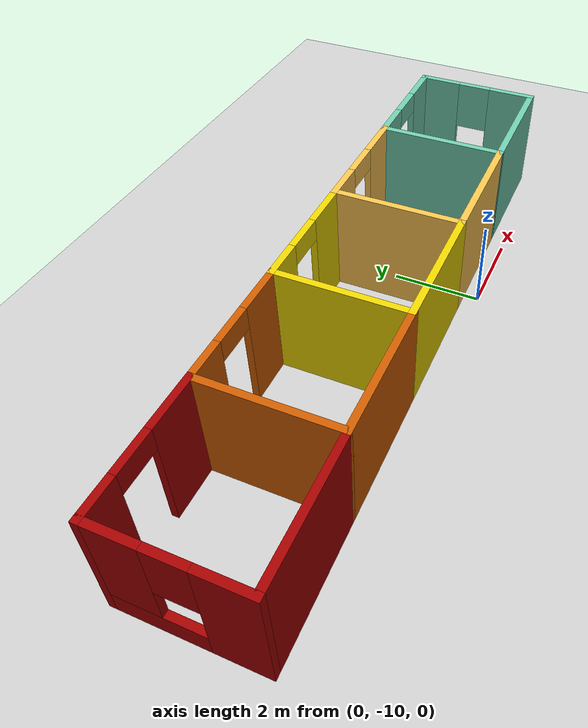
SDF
<sdf version="1.6">
 <world name="default">
  <model name="ground_plane">
   <static>1</static>
   <link name="link">
    <collision name="collision">
     <geometry><plane><normal>0 0 1</normal><size>100 100</size></plane></geometry>
     <surface><friction><ode><mu>100</mu><mu2>50</mu2></ode></friction></surface>
    </collision>
    <visual name="visual">
     <cast_shadows>0</cast_shadows>
     <geometry><plane><normal>0 0 1</normal><size>100 100</size></plane></geometry>
     <material>
      <script><uri>file://media/materials/scripts/gazebo.material</uri><name>Gazebo/Grey</name></script>
     </material>
    </visual>
   </link>
  </model>
  <model name="my_ball">
   <link name="link_0">
    <inertial>
     <mass>1</mass>
     <inertia><ixx>0.1</ixx><ixy>0</ixy><ixz>0</ixz><iyy>0.1</iyy><iyz>0</iyz><izz>0.1</izz></inertia>
    </inertial>
    <visual name="visual">
     <geometry><sphere><radius>0.1</radius></sphere></geometry>
     <material>
      <lighting>1</lighting>
      <script><uri>file://media/materials/scripts/gazebo.material</uri><name>Gazebo/White</name></script>
      <ambient>1 1 1 1</ambient>
      <diffuse>1 1 1 1</diffuse>
      <specular>1 1 1 1</specular>
      <emissive>1 1 1 1</emissive>
      <shader type="vertex"><normal_map>__default__</normal_map></shader>
     </material>
    </visual>
    <collision name="collision">
     <geometry><sphere><radius>0.1</radius></sphere></geometry>
     <surface>
      <friction>
       <ode><mu>1</mu><mu2>1</mu2><fdir1>0 0 0</fdir1><slip1>0</slip1><slip2>0</slip2></ode>
       <torsional>
        <coefficient>1</coefficient>
        <patch_radius>0</patch_radius>
        <surface_radius>0</surface_radius>
        <use_patch_radius>1</use_patch_radius>
        <ode><slip>0</slip></ode>
       </torsional>
      </friction>
      <bounce><restitution_coefficient>0</restitution_coefficient><threshold>1e+06</threshold></bounce>
      <contact>
       <collide_without_contact>0</collide_without_contact>
       <collide_without_contact_bitmask>1</collide_without_contact_bitmask>
       <collide_bitmask>1</collide_bitmask>
       <ode>
        <soft_cfm>0</soft_cfm>
        <soft_erp>0.2</soft_erp>
        <kp>1e+13</kp>
        <kd>1</kd>
        <max_vel>0.01</max_vel>
        <min_depth>0</min_depth>
       </ode>
       <bullet>
        <split_impulse>1</split_impulse>
        <split_impulse_penetration_threshold>-0.01</split_impulse_penetration_threshold>
        <soft_cfm>0</soft_cfm>
        <soft_erp>0.2</soft_erp>
        <kp>1e+13</kp>
        <kd>1</kd>
       </bullet>
      </contact>
     </surface>
    </collision>
   </link>
   <static>0</static>
   <pose>-1.34211 -5.86794 0.1 0 -0 0</pose>
  </model>
  <model name="office_4_0_clone">
   <pose>-2.02145 -8.8346 0 0 0 -3.12984</pose>
   <link name="Wall_0">
    <collision name="Wall_0_Collision">
     <geometry><box><size>3 0.15 2.5</size></box></geometry>
     <pose>0 0 1.25 0 -0 0</pose>
    </collision>
    <visual name="Wall_0_Visual">
     <pose>0 0 1.25 0 -0 0</pose>
     <geometry><box><size>3 0.15 2.5</size></box></geometry>
     <material>
      <script><uri>file://media/materials/scripts/gazebo.material</uri><name>Gazebo/Grey</name></script>
      <ambient>0.435294 0.796078 0.67451 1</ambient>
     </material>
     <meta><layer>0</layer></meta>
    </visual>
    <pose>-5.7 0.8025 0 0 -0 0</pose>
   </link>
   <link name="Wall_1">
    <collision name="Wall_1_Collision">
     <geometry><box><size>3 0.15 2.5</size></box></geometry>
     <pose>0 0 1.25 0 -0 0</pose>
    </collision>
    <visual name="Wall_1_Visual">
     <pose>0 0 1.25 0 -0 0</pose>
     <geometry><box><size>3 0.15 2.5</size></box></geometry>
     <material>
      <script><uri>file://media/materials/scripts/gazebo.material</uri><name>Gazebo/Grey</name></script>
      <ambient>0.435294 0.796078 0.67451 1</ambient>
     </material>
     <meta><layer>0</layer></meta>
    </visual>
    <pose>-4.275 -0.6225 0 0 -0 -1.5708</pose>
   </link>
   <link name="Wall_10">
    <pose>5.7 -2.0475 0 0 -0 3.14159</pose>
    <visual name="Wall_10_Visual_0">
     <pose>-1.06469 0 1.25 0 -0 0</pose>
     <geometry><box><size>0.870623 0.15 2.5</size></box></geometry>
     <material>
      <script><uri>file://media/materials/scripts/gazebo.material</uri><name>Gazebo/Grey</name></script>
      <ambient>0.643137 0 0 1</ambient>
     </material>
     <meta><layer>0</layer></meta>
    </visual>
    <collision name="Wall_10_Collision_0">
     <geometry><box><size>0.870623 0.15 2.5</size></box></geometry>
     <pose>-1.06469 0 1.25 0 -0 0</pose>
    </collision>
    <visual name="Wall_10_Visual_1">
     <pose>0.885312 0 1.25 0 -0 0</pose>
     <geometry><box><size>1.22938 0.15 2.5</size></box></geometry>
     <material>
      <script><uri>file://media/materials/scripts/gazebo.material</uri><name>Gazebo/Grey</name></script>
      <ambient>0.643137 0 0 1</ambient>
     </material>
     <meta><layer>0</layer></meta>
    </visual>
    <collision name="Wall_10_Collision_1">
     <geometry><box><size>1.22938 0.15 2.5</size></box></geometry>
     <pose>0.885312 0 1.25 0 -0 0</pose>
    </collision>
    <visual name="Wall_10_Visual_2">
     <pose>-0.179377 0 2.25 0 -0 0</pose>
     <geometry><box><size>0.9 0.15 0.5</size></box></geometry>
     <material>
      <script><uri>file://media/materials/scripts/gazebo.material</uri><name>Gazebo/Grey</name></script>
      <ambient>0.643137 0 0 1</ambient>
     </material>
     <meta><layer>0</layer></meta>
    </visual>
    <collision name="Wall_10_Collision_2">
     <geometry><box><size>0.9 0.15 0.5</size></box></geometry>
     <pose>-0.179377 0 2.25 0 -0 0</pose>
    </collision>
   </link>
   <link name="Wall_12">
    <pose>0 -2.0475 0 0 -0 0</pose>
    <visual name="Wall_12_Visual_0">
     <pose>-0.909766 0 1.25 0 -0 0</pose>
     <geometry><box><size>1.18047 0.15 2.5</size></box></geometry>
     <material>
      <script><uri>file://media/materials/scripts/gazebo.material</uri><name>Gazebo/Grey</name></script>
      <ambient>0.929412 0.831373 0 1</ambient>
     </material>
     <meta><layer>0</layer></meta>
    </visual>
    <collision name="Wall_12_Collision_0">
     <geometry><box><size>1.18047 0.15 2.5</size></box></geometry>
     <pose>-0.909766 0 1.25 0 -0 0</pose>
    </collision>
    <visual name="Wall_12_Visual_1">
     <pose>1.04023 0 1.25 0 -0 0</pose>
     <geometry><box><size>0.919531 0.15 2.5</size></box></geometry>
     <material>
      <script><uri>file://media/materials/scripts/gazebo.material</uri><name>Gazebo/Grey</name></script>
      <ambient>0.929412 0.831373 0 1</ambient>
     </material>
     <meta><layer>0</layer></meta>
    </visual>
    <collision name="Wall_12_Collision_1">
     <geometry><box><size>0.919531 0.15 2.5</size></box></geometry>
     <pose>1.04023 0 1.25 0 -0 0</pose>
    </collision>
    <visual name="Wall_12_Visual_2">
     <pose>0.130469 0 2.25 0 -0 0</pose>
     <geometry><box><size>0.9 0.15 0.5</size></box></geometry>
     <material>
      <script><uri>file://media/materials/scripts/gazebo.material</uri><name>Gazebo/Grey</name></script>
      <ambient>0.929412 0.831373 0 1</ambient>
     </material>
     <meta><layer>0</layer></meta>
    </visual>
    <collision name="Wall_12_Collision_2">
     <geometry><box><size>0.9 0.15 0.5</size></box></geometry>
     <pose>0.130469 0 2.25 0 -0 0</pose>
    </collision>
   </link>
   <link name="Wall_14">
    <collision name="Wall_14_Collision">
     <geometry><box><size>3 0.15 2.5</size></box></geometry>
     <pose>0 0 1.25 0 -0 0</pose>
    </collision>
    <visual name="Wall_14_Visual">
     <pose>0 0 1.25 0 -0 0</pose>
     <geometry><box><size>3 0.15 2.5</size></box></geometry>
     <material>
      <script><uri>file://media/materials/scripts/gazebo.material</uri><name>Gazebo/Grey</name></script>
      <ambient>0.807843 0.360784 0 1</ambient>
     </material>
     <meta><layer>0</layer></meta>
    </visual>
    <pose>2.85 0.8025 0 0 -0 0</pose>
   </link>
   <link name="Wall_16">
    <collision name="Wall_16_Collision">
     <geometry><box><size>3 0.15 2.5</size></box></geometry>
     <pose>0 0 1.25 0 -0 0</pose>
    </collision>
    <visual name="Wall_16_Visual">
     <pose>0 0 1.25 0 -0 0</pose>
     <geometry><box><size>3 0.15 2.5</size></box></geometry>
     <material>
      <script><uri>file://media/materials/scripts/gazebo.material</uri><name>Gazebo/Grey</name></script>
      <ambient>1 0.764706 0.305882 1</ambient>
     </material>
     <meta><layer>0</layer></meta>
    </visual>
    <pose>-2.85 0.8025 0 0 -0 0</pose>
   </link>
   <link name="Wall_18">
    <pose>-5.7 -2.0475 0 0 -0 3.14159</pose>
    <visual name="Wall_18_Visual_0">
     <pose>-0.992968 0 1.25 0 -0 0</pose>
     <geometry><box><size>1.01406 0.15 2.5</size></box></geometry>
     <material>
      <script><uri>file://media/materials/scripts/gazebo.material</uri><name>Gazebo/Grey</name></script>
      <ambient>0.435294 0.796078 0.67451 1</ambient>
     </material>
     <meta><layer>0</layer></meta>
    </visual>
    <collision name="Wall_18_Collision_0">
     <geometry><box><size>1.01406 0.15 2.5</size></box></geometry>
     <pose>-0.992968 0 1.25 0 -0 0</pose>
    </collision>
    <visual name="Wall_18_Visual_1">
     <pose>0.957032 0 1.25 0 -0 0</pose>
     <geometry><box><size>1.08594 0.15 2.5</size></box></geometry>
     <material>
      <script><uri>file://media/materials/scripts/gazebo.material</uri><name>Gazebo/Grey</name></script>
      <ambient>0.435294 0.796078 0.67451 1</ambient>
     </material>
     <meta><layer>0</layer></meta>
    </visual>
    <collision name="Wall_18_Collision_1">
     <geometry><box><size>1.08594 0.15 2.5</size></box></geometry>
     <pose>0.957032 0 1.25 0 -0 0</pose>
    </collision>
    <visual name="Wall_18_Visual_2">
     <pose>-0.035935 0 2.25 0 -0 0</pose>
     <geometry><box><size>0.9 0.15 0.5</size></box></geometry>
     <material>
      <script><uri>file://media/materials/scripts/gazebo.material</uri><name>Gazebo/Grey</name></script>
      <ambient>0.435294 0.796078 0.67451 1</ambient>
     </material>
     <meta><layer>0</layer></meta>
    </visual>
    <collision name="Wall_18_Collision_2">
     <geometry><box><size>0.9 0.15 0.5</size></box></geometry>
     <pose>-0.035935 0 2.25 0 -0 0</pose>
    </collision>
   </link>
   <link name="Wall_19">
    <pose>-7.125 -0.6225 0 0 -0 1.5708</pose>
    <visual name="Wall_19_Visual_0">
     <pose>-0.974081 0 1.25 0 -0 0</pose>
     <geometry><box><size>1.05184 0.15 2.5</size></box></geometry>
     <material>
      <script><uri>file://media/materials/scripts/gazebo.material</uri><name>Gazebo/Grey</name></script>
      <ambient>0.435294 0.796078 0.67451 1</ambient>
     </material>
     <meta><layer>0</layer></meta>
    </visual>
    <collision name="Wall_19_Collision_0">
     <geometry><box><size>1.05184 0.15 2.5</size></box></geometry>
     <pose>-0.974081 0 1.25 0 -0 0</pose>
    </collision>
    <visual name="Wall_19_Visual_1">
     <pose>0.525919 0 0.25 0 -0 0</pose>
     <geometry><box><size>1.94816 0.15 0.5</size></box></geometry>
     <material>
      <script><uri>file://media/materials/scripts/gazebo.material</uri><name>Gazebo/Grey</name></script>
      <ambient>0.435294 0.796078 0.67451 1</ambient>
     </material>
     <meta><layer>0</layer></meta>
    </visual>
    <collision name="Wall_19_Collision_1">
     <geometry><box><size>1.94816 0.15 0.5</size></box></geometry>
     <pose>0.525919 0 0.25 0 -0 0</pose>
    </collision>
    <visual name="Wall_19_Visual_2">
     <pose>0.925919 0 1.5 0 -0 0</pose>
     <geometry><box><size>1.14816 0.15 2</size></box></geometry>
     <material>
      <script><uri>file://media/materials/scripts/gazebo.material</uri><name>Gazebo/Grey</name></script>
      <ambient>0.435294 0.796078 0.67451 1</ambient>
     </material>
     <meta><layer>0</layer></meta>
    </visual>
    <collision name="Wall_19_Collision_2">
     <geometry><box><size>1.14816 0.15 2</size></box></geometry>
     <pose>0.925919 0 1.5 0 -0 0</pose>
    </collision>
    <visual name="Wall_19_Visual_3">
     <pose>-0.048161 0 1.9 0 -0 0</pose>
     <geometry><box><size>0.8 0.15 1.2</size></box></geometry>
     <material>
      <script><uri>file://media/materials/scripts/gazebo.material</uri><name>Gazebo/Grey</name></script>
      <ambient>0.435294 0.796078 0.67451 1</ambient>
     </material>
     <meta><layer>0</layer></meta>
    </visual>
    <collision name="Wall_19_Collision_3">
     <geometry><box><size>0.8 0.15 1.2</size></box></geometry>
     <pose>-0.048161 0 1.9 0 -0 0</pose>
    </collision>
   </link>
   <link name="Wall_2">
    <pose>-2.85 -2.0475 0 0 -0 0</pose>
    <visual name="Wall_2_Visual_0">
     <pose>-0.937201 0 1.25 0 -0 0</pose>
     <geometry><box><size>1.1256 0.15 2.5</size></box></geometry>
     <material>
      <script><uri>file://media/materials/scripts/gazebo.material</uri><name>Gazebo/Grey</name></script>
      <ambient>1 0.764706 0.305882 1</ambient>
     </material>
     <meta><layer>0</layer></meta>
    </visual>
    <collision name="Wall_2_Collision_0">
     <geometry><box><size>1.1256 0.15 2.5</size></box></geometry>
     <pose>-0.937201 0 1.25 0 -0 0</pose>
    </collision>
    <visual name="Wall_2_Visual_1">
     <pose>1.0128 0 1.25 0 -0 0</pose>
     <geometry><box><size>0.974402 0.15 2.5</size></box></geometry>
     <material>
      <script><uri>file://media/materials/scripts/gazebo.material</uri><name>Gazebo/Grey</name></script>
      <ambient>1 0.764706 0.305882 1</ambient>
     </material>
     <meta><layer>0</layer></meta>
    </visual>
    <collision name="Wall_2_Collision_1">
     <geometry><box><size>0.974402 0.15 2.5</size></box></geometry>
     <pose>1.0128 0 1.25 0 -0 0</pose>
    </collision>
    <visual name="Wall_2_Visual_2">
     <pose>0.075598 0 2.25 0 -0 0</pose>
     <geometry><box><size>0.9 0.15 0.5</size></box></geometry>
     <material>
      <script><uri>file://media/materials/scripts/gazebo.material</uri><name>Gazebo/Grey</name></script>
      <ambient>1 0.764706 0.305882 1</ambient>
     </material>
     <meta><layer>0</layer></meta>
    </visual>
    <collision name="Wall_2_Collision_2">
     <geometry><box><size>0.9 0.15 0.5</size></box></geometry>
     <pose>0.075598 0 2.25 0 -0 0</pose>
    </collision>
   </link>
   <link name="Wall_3">
    <collision name="Wall_3_Collision">
     <geometry><box><size>3 0.15 2.5</size></box></geometry>
     <pose>0 0 1.25 0 -0 0</pose>
    </collision>
    <visual name="Wall_3_Visual">
     <pose>0 0 1.25 0 -0 0</pose>
     <geometry><box><size>3 0.15 2.5</size></box></geometry>
     <material>
      <script><uri>file://media/materials/scripts/gazebo.material</uri><name>Gazebo/Grey</name></script>
      <ambient>1 0.764706 0.305882 1</ambient>
     </material>
     <meta><layer>0</layer></meta>
    </visual>
    <pose>-1.425 -0.6225 0 0 -0 1.5708</pose>
   </link>
   <link name="Wall_4">
    <collision name="Wall_4_Collision">
     <geometry><box><size>3 0.15 2.5</size></box></geometry>
     <pose>0 0 1.25 0 -0 0</pose>
    </collision>
    <visual name="Wall_4_Visual">
     <pose>0 0 1.25 0 -0 0</pose>
     <geometry><box><size>3 0.15 2.5</size></box></geometry>
     <material>
      <script><uri>file://media/materials/scripts/gazebo.material</uri><name>Gazebo/Grey</name></script>
      <ambient>0.929412 0.831373 0 1</ambient>
     </material>
     <meta><layer>0</layer></meta>
    </visual>
    <pose>0 0.8025 0 0 -0 0</pose>
   </link>
   <link name="Wall_5">
    <collision name="Wall_5_Collision">
     <geometry><box><size>3 0.15 2.5</size></box></geometry>
     <pose>0 0 1.25 0 -0 0</pose>
    </collision>
    <visual name="Wall_5_Visual">
     <pose>0 0 1.25 0 -0 0</pose>
     <geometry><box><size>3 0.15 2.5</size></box></geometry>
     <material>
      <script><uri>file://media/materials/scripts/gazebo.material</uri><name>Gazebo/Grey</name></script>
      <ambient>0.929412 0.831373 0 1</ambient>
     </material>
     <meta><layer>0</layer></meta>
    </visual>
    <pose>1.425 -0.6225 0 0 -0 -1.5708</pose>
   </link>
   <link name="Wall_6">
    <pose>2.85 -2.0475 0 0 -0 0</pose>
    <visual name="Wall_6_Visual_0">
     <pose>-0.920352 0 1.25 0 -0 0</pose>
     <geometry><box><size>1.1593 0.15 2.5</size></box></geometry>
     <material>
      <script><uri>file://media/materials/scripts/gazebo.material</uri><name>Gazebo/Grey</name></script>
      <ambient>0.807843 0.360784 0 1</ambient>
     </material>
     <meta><layer>0</layer></meta>
    </visual>
    <collision name="Wall_6_Collision_0">
     <geometry><box><size>1.1593 0.15 2.5</size></box></geometry>
     <pose>-0.920352 0 1.25 0 -0 0</pose>
    </collision>
    <visual name="Wall_6_Visual_1">
     <pose>1.02965 0 1.25 0 -0 0</pose>
     <geometry><box><size>0.940704 0.15 2.5</size></box></geometry>
     <material>
      <script><uri>file://media/materials/scripts/gazebo.material</uri><name>Gazebo/Grey</name></script>
      <ambient>0.807843 0.360784 0 1</ambient>
     </material>
     <meta><layer>0</layer></meta>
    </visual>
    <collision name="Wall_6_Collision_1">
     <geometry><box><size>0.940704 0.15 2.5</size></box></geometry>
     <pose>1.02965 0 1.25 0 -0 0</pose>
    </collision>
    <visual name="Wall_6_Visual_2">
     <pose>0.109296 0 2.25 0 -0 0</pose>
     <geometry><box><size>0.9 0.15 0.5</size></box></geometry>
     <material>
      <script><uri>file://media/materials/scripts/gazebo.material</uri><name>Gazebo/Grey</name></script>
      <ambient>0.807843 0.360784 0 1</ambient>
     </material>
     <meta><layer>0</layer></meta>
    </visual>
    <collision name="Wall_6_Collision_2">
     <geometry><box><size>0.9 0.15 0.5</size></box></geometry>
     <pose>0.109296 0 2.25 0 -0 0</pose>
    </collision>
   </link>
   <link name="Wall_7">
    <collision name="Wall_7_Collision">
     <geometry><box><size>3 0.15 2.5</size></box></geometry>
     <pose>0 0 1.25 0 -0 0</pose>
    </collision>
    <visual name="Wall_7_Visual">
     <pose>0 0 1.25 0 -0 0</pose>
     <geometry><box><size>3 0.15 2.5</size></box></geometry>
     <material>
      <script><uri>file://media/materials/scripts/gazebo.material</uri><name>Gazebo/Grey</name></script>
      <ambient>0.807843 0.360784 0 1</ambient>
     </material>
     <meta><layer>0</layer></meta>
    </visual>
    <pose>4.275 -0.6225 0 0 -0 1.5708</pose>
   </link>
   <link name="Wall_8">
    <collision name="Wall_8_Collision">
     <geometry><box><size>3 0.15 2.5</size></box></geometry>
     <pose>0 0 1.25 0 -0 0</pose>
    </collision>
    <visual name="Wall_8_Visual">
     <pose>0 0 1.25 0 -0 0</pose>
     <geometry><box><size>3 0.15 2.5</size></box></geometry>
     <material>
      <script><uri>file://media/materials/scripts/gazebo.material</uri><name>Gazebo/Grey</name></script>
      <ambient>0.643137 0 0 1</ambient>
     </material>
     <meta><layer>0</layer></meta>
    </visual>
    <pose>5.7 0.8025 0 0 -0 0</pose>
   </link>
   <link name="Wall_9">
    <pose>7.125 -0.6225 0 0 -0 -1.5708</pose>
    <visual name="Wall_9_Visual_0">
     <pose>-0.956337 0 1.25 0 -0 0</pose>
     <geometry><box><size>1.08733 0.15 2.5</size></box></geometry>
     <material>
      <script><uri>file://media/materials/scripts/gazebo.material</uri><name>Gazebo/Grey</name></script>
      <ambient>0.643137 0 0 1</ambient>
     </material>
     <meta><layer>0</layer></meta>
    </visual>
    <collision name="Wall_9_Collision_0">
     <geometry><box><size>1.08733 0.15 2.5</size></box></geometry>
     <pose>-0.956337 0 1.25 0 -0 0</pose>
    </collision>
    <visual name="Wall_9_Visual_1">
     <pose>0.543663 0 0.25 0 -0 0</pose>
     <geometry><box><size>1.91267 0.15 0.5</size></box></geometry>
     <material>
      <script><uri>file://media/materials/scripts/gazebo.material</uri><name>Gazebo/Grey</name></script>
      <ambient>0.643137 0 0 1</ambient>
     </material>
     <meta><layer>0</layer></meta>
    </visual>
    <collision name="Wall_9_Collision_1">
     <geometry><box><size>1.91267 0.15 0.5</size></box></geometry>
     <pose>0.543663 0 0.25 0 -0 0</pose>
    </collision>
    <visual name="Wall_9_Visual_2">
     <pose>0.943663 0 1.5 0 -0 0</pose>
     <geometry><box><size>1.11267 0.15 2</size></box></geometry>
     <material>
      <script><uri>file://media/materials/scripts/gazebo.material</uri><name>Gazebo/Grey</name></script>
      <ambient>0.643137 0 0 1</ambient>
     </material>
     <meta><layer>0</layer></meta>
    </visual>
    <collision name="Wall_9_Collision_2">
     <geometry><box><size>1.11267 0.15 2</size></box></geometry>
     <pose>0.943663 0 1.5 0 -0 0</pose>
    </collision>
    <visual name="Wall_9_Visual_3">
     <pose>-0.012674 0 1.9 0 -0 0</pose>
     <geometry><box><size>0.8 0.15 1.2</size></box></geometry>
     <material>
      <script><uri>file://media/materials/scripts/gazebo.material</uri><name>Gazebo/Grey</name></script>
      <ambient>0.643137 0 0 1</ambient>
     </material>
     <meta><layer>0</layer></meta>
    </visual>
    <collision name="Wall_9_Collision_3">
     <geometry><box><size>0.8 0.15 1.2</size></box></geometry>
     <pose>-0.012674 0 1.9 0 -0 0</pose>
    </collision>
   </link>
   <static>1</static>
  </model>
 </world>
</sdf>
